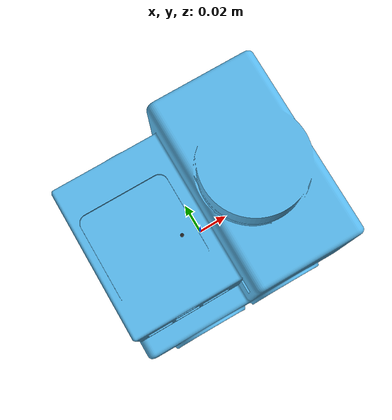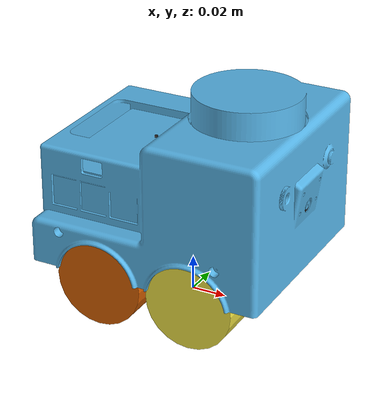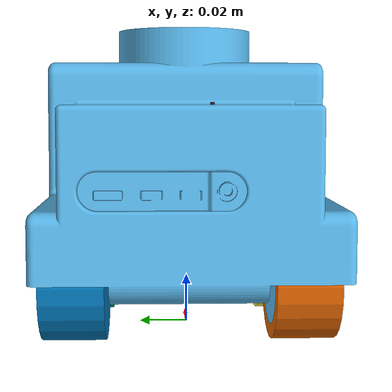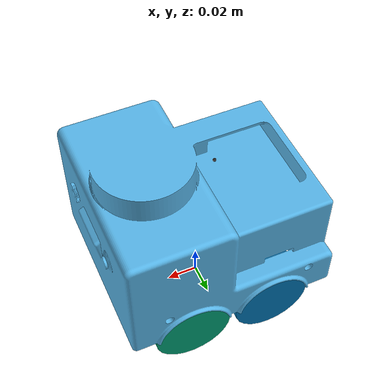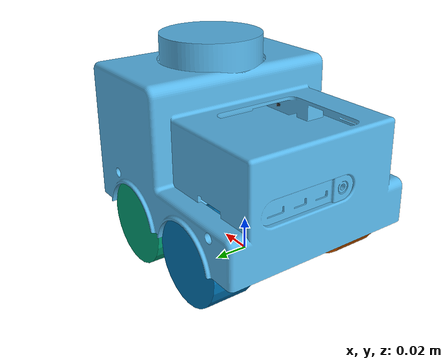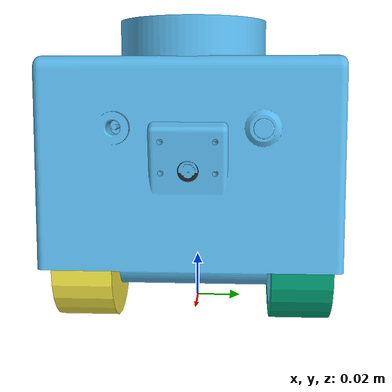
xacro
<?xml version='1.0'?>

<robot name="aibot_a1" xmlns:xacro="http://ros.org/wiki/xacro">

  <link name='base_link' />

  <link name='base_footprint'>

    <visual name='base_footprint_visual'>
      <origin xyz="0 0 0" rpy="0 0 1.57"/>
      <geometry>
        <mesh filename="package://aibot_description/meshes/mini/car_body.stl" scale="0.001 0.001 0.001"/>
      </geometry>
    </visual>

    <collision name='collision_body'>
    <origin xyz="0 0 0" rpy="0 0 0"/>
      <geometry>
        <box size="0.135 0.118 0.112"/>
      </geometry>
    </collision>

  </link>

  <joint name="base_footprint_joint" type="fixed" >
    <origin xyz="0 0 0.004" rpy="0 0 0"/>
    <child link="base_footprint"/>
    <parent link="base_link"/>
  </joint>

  <link name="front_left_wheel">

    <visual name="front_left_wheel_visual">
      <origin xyz="0 0 0" rpy="0 1.5707 1.5707"/>
      <geometry>
        <cylinder radius="0.025" length="0.025"/>
      </geometry>
    </visual>

    <collision name="collision_front_left_wheel">
      <origin xyz="0 0 0" rpy="0 1.5707 1.5707"/>
      <geometry>
        <cylinder radius="0.025" length="0.025"/>
      </geometry>
    </collision>

  </link>

  <link name="front_right_wheel">

    <visual name="front_right_wheel_visual">
      <origin xyz="0 0 0.0" rpy="0 1.5707 1.5707"/>
      <geometry>
        <cylinder radius="0.025" length="0.025"/>
      </geometry>
    </visual>

    <collision name="collision_front_right_wheel">
      <origin xyz="0 0 0" rpy="0 1.5707 1.5707"/>
      <geometry>
        <cylinder radius="0.025" length="0.025"/>
      </geometry>
    </collision>

  </link>

  <joint name="front_left_wheel_hinge" type="fixed">
    <origin xyz="0.027 0.045 0.021" rpy="0 0 0"/>
    <child link="front_left_wheel"/>
    <parent link="base_footprint"/>
    <axis xyz="0 1 0" rpy="0 0 0"/>
    <limit effort="10000" velocity="1000"/>
    <joint_properties damping="1.0" friction="1.0"/>
  </joint>

  <joint name="front_right_wheel_hinge" type="fixed">
    <origin xyz="0.027 -0.045 0.021" rpy="0 0 0"/>
    <child link="front_right_wheel"/>
    <parent link="base_footprint"/>
    <axis xyz="0 1 0" rpy="0 0 0"/>
    <limit effort="10000" velocity="1000"/>
    <joint_properties damping="1.0" friction="1.0"/>
  </joint>

  <link name="rear_left_wheel">

    <visual name="rear_left_wheel_visual">
      <origin xyz="0 0 0" rpy="0 1.5707 1.5707"/>
      <geometry>
        <cylinder radius="0.025" length="0.025"/>
      </geometry>
    </visual>

    <collision name="collision_rear_left_wheel">
      <origin xyz="0 0 0" rpy="0 1.5707 1.5707"/>
      <geometry>
        <cylinder radius="0.025" length="0.025"/>
      </geometry>
    </collision>

  </link>

  <link name="rear_right_wheel">

    <visual name="rear_right_wheel_visual">
      <origin xyz="0 0 0" rpy="0 1.5707 1.5707"/>
      <geometry>
        <cylinder radius="0.025" length="0.025"/>
      </geometry>
    </visual>

    <collision name="collision_rear_right_wheel">
      <origin xyz="0 0 0" rpy="0 1.5707 1.5707"/>
      <geometry>
        <cylinder radius="0.025" length="0.025"/>
      </geometry>
    </collision>

  </link>

  <joint name="rear_left_wheel_hinge" type="fixed">
    <origin xyz="-0.027 0.045 0.021" rpy="0 0 0"/>
    <child link="rear_left_wheel"/>
    <parent link="base_footprint"/>
    <axis xyz="0 1 0" rpy="0 0 0"/>
    <limit effort="10000" velocity="1000"/>
    <joint_properties damping="1.0" friction="1.0"/>
  </joint>

  <joint name="rear_right_wheel_hinge" type="fixed">
    <origin xyz="-0.027 -0.045 0.021" rpy="0 0 0"/>
    <child link="rear_right_wheel"/>
    <parent link="base_footprint"/>
    <axis xyz="0 1 0" rpy="0 0 0"/>
    <limit effort="10000" velocity="1000"/>
    <joint_properties damping="1.0" friction="1.0"/>
  </joint>

  <link name="camera">

    <visual name="camera_visual">
      <origin xyz="0 0 0" rpy="0 0 0"/>
      <geometry>
        <cylinder radius="0.005" length="0.005"/>
      </geometry>
      <material name="black"/>
    </visual>

    <collision name="collision_camera">
      <origin xyz="0 0 0" rpy="0 0 0"/>
      <geometry>
        <cylinder radius="0.005" length="0.005"/>
      </geometry>
    </collision>

  </link>

  <joint name="camera_joint" type="fixed">
    <origin xyz="0.065 0 0.064" rpy="1.57 0 1.57"/>
    <parent link="base_footprint"/>
    <child link="camera"/>
  </joint>

  <link name="laser">

    <visual name="laser_visual">
      <origin xyz="0 0 0" rpy="0 0 0"/>
      <geometry>
        <cylinder radius="0.028" length="0.013"/>
      </geometry>
      <material name="green_black"/>
    </visual>

    <collision name="collision_laser">
      <origin xyz="0 0 0" rpy="0 0 0"/>
      <geometry>
        <cylinder radius="0.028" length="0.013"/>
      </geometry>
    </collision>

  </link>

  <joint name="laser_joint" type="fixed">
    <axis xyz="0 1 0" />
    <origin xyz="0.0325 0 0.115" rpy="0 0 1.57"/>
    <parent link="base_footprint"/>
    <child link="laser"/>
  </joint>

  <link name="imu_link">

    <visual name="imu_visual">
      <origin xyz="0 0 0" rpy="0 0 0"/>
      <geometry>
        <cylinder radius="0.001" length="0.001"/>
      </geometry>
      <material name="black"/>
    </visual>

  </link>

  <joint name="imu_joint" type="fixed">
    <origin xyz="-0.017 -0.01 0.09" rpy="0 0 1.57"/>
    <parent link="base_footprint"/>
    <child link="imu_link"/>
  </joint>

</robot>
